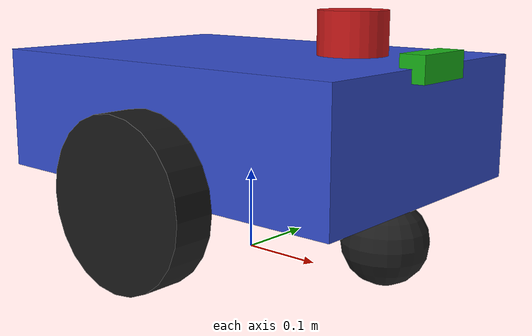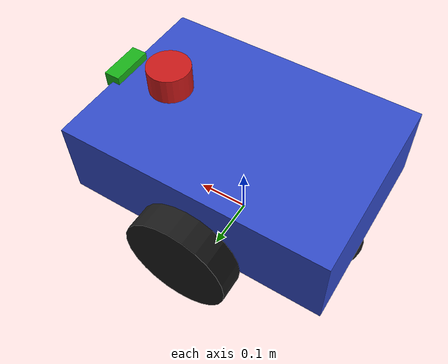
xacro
<?xml version="1.0"?>
<robot name="crip_robot" xmlns:xacro="http://www.ros.org/wiki/xacro">

  <!-- ============ Properties ============ -->
  <xacro:property name="base_length" value="0.50"/>
  <xacro:property name="base_width"  value="0.35"/>
  <xacro:property name="base_height" value="0.15"/>
  <xacro:property name="wheel_radius" value="0.10"/>
  <xacro:property name="wheel_width"  value="0.05"/>
  <xacro:property name="wheel_sep"    value="0.40"/>
  <xacro:property name="mass_base"    value="10.0"/>
  <xacro:property name="mass_wheel"   value="1.0"/>

  <!-- ============ Inertial macros ============ -->
  <xacro:macro name="box_inertia" params="m x y z">
    <inertial>
      <mass value="${m}"/>
      <inertia ixx="${m*(y*y+z*z)/12.0}" ixy="0" ixz="0"
               iyy="${m*(x*x+z*z)/12.0}" iyz="0"
               izz="${m*(x*x+y*y)/12.0}"/>
    </inertial>
  </xacro:macro>

  <xacro:macro name="cyl_inertia" params="m r l">
    <inertial>
      <mass value="${m}"/>
      <inertia ixx="${m*(3*r*r+l*l)/12.0}" ixy="0" ixz="0"
               iyy="${m*(3*r*r+l*l)/12.0}" iyz="0"
               izz="${m*r*r/2.0}"/>
    </inertial>
  </xacro:macro>

  <!-- ============ Base footprint ============ -->
  <link name="base_footprint"/>

  <link name="base_link">
    <visual>
      <geometry><box size="${base_length} ${base_width} ${base_height}"/></geometry>
      <material name="blue"><color rgba="0.2 0.3 0.8 1.0"/></material>
    </visual>
    <collision>
      <geometry><box size="${base_length} ${base_width} ${base_height}"/></geometry>
    </collision>
    <xacro:box_inertia m="${mass_base}" x="${base_length}" y="${base_width}" z="${base_height}"/>
  </link>

  <joint name="base_joint" type="fixed">
    <parent link="base_footprint"/>
    <child link="base_link"/>
    <origin xyz="0 0 ${wheel_radius + base_height/2}" rpy="0 0 0"/>
  </joint>

  <!-- ============ Wheel macro ============ -->
  <xacro:macro name="wheel" params="prefix y_reflect">
    <link name="${prefix}_wheel">
      <visual>
        <origin rpy="${pi/2} 0 0"/>
        <geometry><cylinder radius="${wheel_radius}" length="${wheel_width}"/></geometry>
        <material name="black"><color rgba="0.1 0.1 0.1 1.0"/></material>
      </visual>
      <collision>
        <origin rpy="${pi/2} 0 0"/>
        <geometry><cylinder radius="${wheel_radius}" length="${wheel_width}"/></geometry>
      </collision>
      <xacro:cyl_inertia m="${mass_wheel}" r="${wheel_radius}" l="${wheel_width}"/>
    </link>
    <joint name="${prefix}_wheel_joint" type="continuous">
      <parent link="base_link"/>
      <child link="${prefix}_wheel"/>
      <origin xyz="0 ${y_reflect*wheel_sep/2} ${-base_height/2}" rpy="0 0 0"/>
      <axis xyz="0 1 0"/>
    </joint>
  </xacro:macro>

  <xacro:wheel prefix="left"  y_reflect="1"/>
  <xacro:wheel prefix="right" y_reflect="-1"/>

  <link name="caster">
    <visual><geometry><sphere radius="${wheel_radius/2}"/></geometry></visual>
    <collision><geometry><sphere radius="${wheel_radius/2}"/></geometry></collision>
    <xacro:cyl_inertia m="0.2" r="${wheel_radius/2}" l="0.01"/>
  </link>
  <joint name="caster_joint" type="fixed">
    <parent link="base_link"/>
    <child link="caster"/>
    <origin xyz="${base_length/2 - 0.05} 0 ${-base_height/2 - wheel_radius/2}" rpy="0 0 0"/>
  </joint>

  <link name="caster_rear">
    <visual><geometry><sphere radius="${wheel_radius/2}"/></geometry></visual>
    <collision><geometry><sphere radius="${wheel_radius/2}"/></geometry></collision>
    <xacro:cyl_inertia m="0.2" r="${wheel_radius/2}" l="0.01"/>
  </link>
  <joint name="caster_rear_joint" type="fixed">
    <parent link="base_link"/>
    <child link="caster_rear"/>
    <origin xyz="${-base_length/2 + 0.05} 0 ${-base_height/2 - wheel_radius/2}" rpy="0 0 0"/>
  </joint>

  <!-- ============ LiDAR ============ -->
  <link name="lidar_link">
    <visual><geometry><cylinder radius="0.04" length="0.05"/></geometry>
      <material name="red"><color rgba="0.8 0.1 0.1 1"/></material></visual>
    <collision><geometry><cylinder radius="0.04" length="0.05"/></geometry></collision>
    <xacro:cyl_inertia m="0.1" r="0.04" l="0.05"/>
  </link>
  <joint name="lidar_joint" type="fixed">
    <parent link="base_link"/>
    <child link="lidar_link"/>
    <origin xyz="${base_length/2 - 0.1} 0 ${base_height/2 + 0.03}" rpy="0 0 0"/>
  </joint>

  <!-- ============ Camera ============ -->
  <link name="camera_link">
    <visual><geometry><box size="0.03 0.08 0.03"/></geometry>
      <material name="green"><color rgba="0.1 0.7 0.1 1"/></material></visual>
    <collision><geometry><box size="0.03 0.08 0.03"/></geometry></collision>
    <xacro:box_inertia m="0.05" x="0.03" y="0.08" z="0.03"/>
  </link>
  <joint name="camera_joint" type="fixed">
    <parent link="base_link"/>
    <child link="camera_link"/>
    <origin xyz="${base_length/2} 0 ${base_height/2}" rpy="0 0 0"/>
  </joint>
  <link name="camera_optical"/>
  <joint name="camera_optical_joint" type="fixed">
    <parent link="camera_link"/>
    <child link="camera_optical"/>
    <origin xyz="0 0 0" rpy="${-pi/2} 0 ${-pi/2}"/>
  </joint>

  <!-- ============ Gazebo plugins ============ -->
  <xacro:include filename="$(find crip_description)/urdf/crip_robot.gazebo.xacro"/>

</robot>
